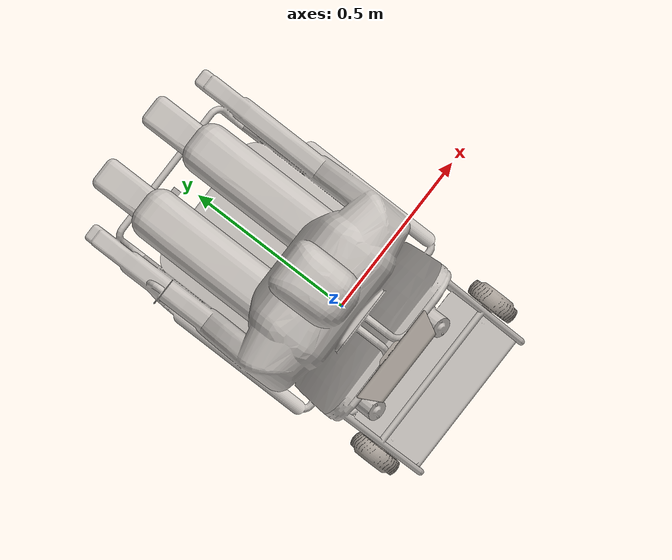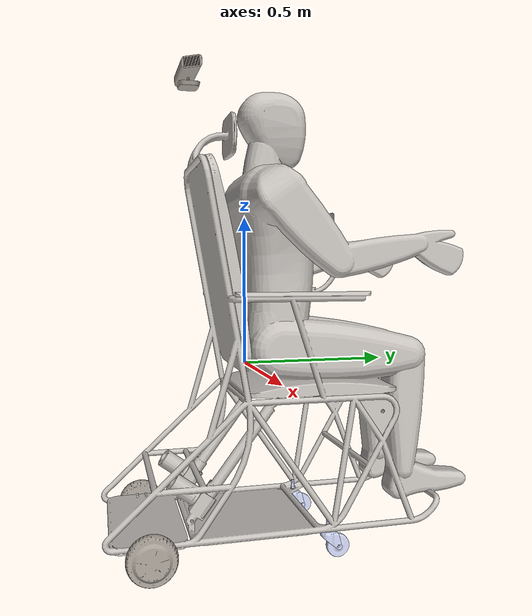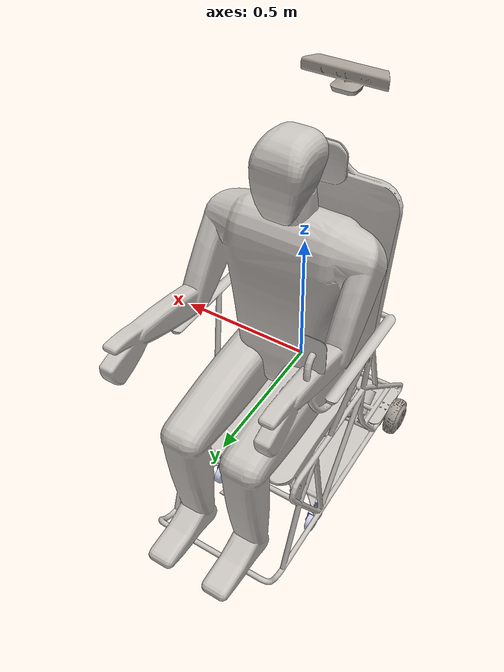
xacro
<?xml version="1.0" encoding="utf-8"?>
<robot xmlns:xacro="http://www.ros.org/wiki/xacro" name="jetchair_urdf">

<link name="base_footprint">
 </link>
 <link
    name="base_link">
    <inertial>
      <origin
        xyz="-0.0310213036661282 -0.117252104820678 -0.00595826621446557"
        rpy="0 0 0" />
      <mass
        value="80.9642334926374" />
      <inertia
        ixx="7.60414582023469"
        ixy="-0.782792858846701"
        ixz="0.0596712285100728"
        iyy="5.34758051540826"
        iyz="0.0883146530810829"
        izz="9.13344971788898" />
    </inertial>
    <visual>
      <origin
        xyz="0 0 0"
        rpy="0 0 0" />
      <geometry>
        <mesh
          filename="package://jet_main/meshes/base_link.STL" />
      </geometry>
      <material
        name="">
        <color
          rgba="0.776470588235294 0.756862745098039 0.737254901960784 1" />
      </material>
    </visual>
    <collision>
      <origin
        xyz="0 0 0"
        rpy="0 0 0" />
      <geometry>
        <mesh
          filename="package://jet_main/meshes/base_link.STL" />
      </geometry>
    </collision>
  </link>
   <joint
    name="base_joint"
    type="fixed">
    <origin
      xyz="0 0 0"
      rpy="0 0 1.57" />
    <parent
      link="base_footprint" />
    <child
      link="base_link" />
    <axis
      xyz="0 0 0" />
  </joint>

  <link
    name="right_wheel">
    <inertial>
      <origin
        xyz="2.18719486966279E-12 7.28081948653259E-06 0.0808545907421791"
        rpy="0 0 0" />
      <mass
        value="7.52810740477963" />
      <inertia
        ixx="0.0124577654624038"
        ixy="7.90440963065184E-14"
        ixz="1.10790272704899E-12"
        iyy="0.012458040042979"
        iyz="3.01210037788592E-06"
        izz="0.0212379730331371" />
    </inertial>
    <visual>
      <origin
        xyz="0 0 0"
        rpy="0 0 0" />
      <geometry>
        <mesh
          filename="package://jet_main/meshes/right_wheel.STL" />
      </geometry>
      <material
        name="">
        <color
          rgba="0.650980392156863 0.619607843137255 0.588235294117647 1" />
      </material>
    </visual>
    <collision>
      <origin
        xyz="0 0 0"
        rpy="0 0 0" />
      <geometry>
        <mesh
          filename="package://jet_main/meshes/right_wheel.STL" />
      </geometry>
    </collision>
  </link>
  <joint
    name="right_wheel_joint"
    type="continuous">
    <origin
      xyz="-0.345425505623131 -0.197945838271758 -0.55194430102951"
      rpy="1.5707963267949 0 0" />
    <parent
      link="base_link" />
    <child
      link="right_wheel" />
    <axis
      xyz="0 0 -1" />
  </joint>
  <link
    name="left_wheel">
    <inertial>
      <origin
        xyz="-2.18725038081402E-12 7.28081948653259E-06 -0.0808545907421791"
        rpy="0 0 0" />
      <mass
        value="7.52810740477961" />
      <inertia
        ixx="0.0124577654624038"
        ixy="-7.90695572382612E-14"
        ixz="1.1078969777514E-12"
        iyy="0.012458040042979"
        iyz="-3.0121003778858E-06"
        izz="0.0212379730331371" />
    </inertial>
    <visual>
      <origin
        xyz="0 0 0"
        rpy="0 0 0" />
      <geometry>
        <mesh
          filename="package://jet_main/meshes/left_wheel.STL" />
      </geometry>
      <material
        name="">
        <color
          rgba="0.650980392156863 0.619607843137255 0.588235294117647 1" />
      </material>
    </visual>
    <collision>
      <origin
        xyz="0 0 0"
        rpy="0 0 0" />
      <geometry>
        <mesh
          filename="package://jet_main/meshes/left_wheel.STL" />
      </geometry>
    </collision>
  </link>
  <joint
    name="left_wheel_joint"
    type="continuous">
    <origin
      xyz="-0.345425505623134 0.199254161728242 -0.551944301029511"
      rpy="1.5707963267949 0 0" />
    <parent
      link="base_link" />
    <child
      link="left_wheel" />
    <axis
      xyz="0 0 -1" />
  </joint>
  <link
    name="right_caster_bearing">
    <inertial>
      <origin
        xyz="0.00857738689563864 -0.022175707908113 0.000537079799070195"
        rpy="0 0 0" />
      <mass
        value="0.0303363458543203" />
      <inertia
        ixx="1.47443404963957E-05"
        ixy="4.20983653989267E-06"
        ixz="-3.43456946058865E-07"
        iyy="1.37640539299902E-05"
        iyz="4.41560643447595E-07"
        izz="1.55492065325909E-05" />
    </inertial>
    <visual>
      <origin
        xyz="0 0 0"
        rpy="0 0 0" />
      <geometry>
        <mesh
          filename="package://jet_main/meshes/right_caster_bearing.STL" />
      </geometry>
      <material
        name="">
        <color
          rgba="0.792156862745098 0.819607843137255 0.933333333333333 1" />
      </material>
    </visual>
    <collision>
      <origin
        xyz="0 0 0"
        rpy="0 0 0" />
      <geometry>
        <mesh
          filename="package://jet_main/meshes/right_caster_bearing.STL" />
      </geometry>
    </collision>
  </link>
  <joint
    name="right_cast_top_joint"
    type="continuous">
    <origin
      xyz="0.23405647736728 -0.21001090178122 -0.532182100047298"
      rpy="1.5707963267949 0 0" />
    <parent
      link="base_link" />
    <child
      link="right_caster_bearing" />
    <axis
      xyz="0 1 0" />
  </joint>
  <link
    name="right_caster_wheel">
    <inertial>
      <origin
        xyz="8.65973959207622E-15 1.4432899320127E-15 -0.0246062500000015"
        rpy="0 0 0" />
      <mass
        value="0.117595069356565" />
      <inertia
        ixx="4.72988252493348E-05"
        ixy="-2.84564689097022E-21"
        ixz="4.68844730240266E-21"
        iyy="4.72988252493348E-05"
        iyz="-4.68650601676631E-21"
        izz="8.10008855173149E-05" />
    </inertial>
    <visual>
      <origin
        xyz="0 0 0"
        rpy="0 0 0" />
      <geometry>
        <mesh
          filename="package://jet_main/meshes/right_caster_wheel.STL" />
      </geometry>
      <material
        name="">
        <color
          rgba="0.792156862745098 0.819607843137255 0.933333333333333 1" />
      </material>
    </visual>
    <collision>
      <origin
        xyz="0 0 0"
        rpy="0 0 0" />
      <geometry>
        <mesh
          filename="package://jet_main/meshes/right_caster_wheel.STL" />
      </geometry>
    </collision>
  </link>
  <joint
    name="right_cast_bottom_joint"
    type="continuous">
    <origin
      xyz="0.0342681608192805 -0.0623782373405626 0.0246062499999999"
      rpy="0 0 0" />
    <parent
      link="right_caster_bearing" />
    <child
      link="right_caster_wheel" />
    <axis
      xyz="0 0 -1" />
  </joint>
  <link
    name="left_caster_bearing">
    <inertial>
      <origin
        xyz="0.00857738691168408 -0.0221757079081139 0.000537079798720114"
        rpy="0 0 0" />
      <mass
        value="0.0303363458543198" />
      <inertia
        ixx="1.47443404747391E-05"
        ixy="4.20983653806445E-06"
        ixz="-3.43456974644208E-07"
        iyy="1.37640539299901E-05"
        iyz="4.41560643416159E-07"
        izz="1.5549206554247E-05" />
    </inertial>
    <visual>
      <origin
        xyz="0 0 0"
        rpy="0 0 0" />
      <geometry>
        <mesh
          filename="package://jet_main/meshes/left_caster_bearing.STL" />
      </geometry>
      <material
        name="">
        <color
          rgba="0.792156862745098 0.819607843137255 0.933333333333333 1" />
      </material>
    </visual>
    <collision>
      <origin
        xyz="0 0 0"
        rpy="0 0 0" />
      <geometry>
        <mesh
          filename="package://jet_main/meshes/left_caster_bearing.STL" />
      </geometry>
    </collision>
  </link>
  <joint
    name="left_cast_top_joint"
    type="continuous">
    <origin
      xyz="0.234056477367286 0.214319225237707 -0.532182100047298"
      rpy="1.5707963267949 0 0" />
    <parent
      link="base_link" />
    <child
      link="left_caster_bearing" />
    <axis
      xyz="0 1 0" />
  </joint>
  <link
    name="left_caster_wheel">
    <inertial>
      <origin
        xyz="2.77555756156289E-16 0 -0.02460625"
        rpy="0 0 0" />
      <mass
        value="0.117595069356565" />
      <inertia
        ixx="4.72988252493356E-05"
        ixy="-1.33906203375052E-22"
        ixz="-1.97076603661464E-20"
        iyy="4.72988252493356E-05"
        iyz="-4.82872516489977E-21"
        izz="8.10008855173164E-05" />
    </inertial>
    <visual>
      <origin
        xyz="0 0 0"
        rpy="0 0 0" />
      <geometry>
        <mesh
          filename="package://jet_main/meshes/left_caster_wheel.STL" />
      </geometry>
      <material
        name="">
        <color
          rgba="0.792156862745098 0.819607843137255 0.933333333333333 1" />
      </material>
    </visual>
    <collision>
      <origin
        xyz="0 0 0"
        rpy="0 0 0" />
      <geometry>
        <mesh
          filename="package://jet_main/meshes/left_caster_wheel.STL" />
      </geometry>
    </collision>
  </link>
  <joint
    name="left_cast_bottom_joint"
    type="continuous">
    <origin
      xyz="0.0342681608192785 -0.0623782373405634 0.0246062500000033"
      rpy="0 0 0" />
    <parent
      link="left_caster_bearing" />
    <child
      link="left_caster_wheel" />
    <axis
      xyz="0 0 -1" />
  </joint>
  <link
    name="lidar">
    <inertial>
      <origin
        xyz="-0.00676832715317711 0.0073878521073858 9.17768374699185E-05"
        rpy="0 0 0" />
      <mass
        value="1.33041048124832" />
      <inertia
        ixx="0.000614736954229149"
        ixy="0.000158189979278382"
        ixz="-8.00271259590246E-07"
        iyy="0.00109812375363565"
        iyz="-3.09603626647974E-06"
        izz="0.000960497023041251" />
    </inertial>
    <visual>
      <origin
        xyz="0 0 0"
        rpy="+1.57 0 0" />
      <geometry>
        <mesh
          filename="package://jet_main/meshes/lidar_link.STL" />
      </geometry>
      <material
        name="">
        <color
          rgba="0.298039215686275 0.298039215686275 0.298039215686275 1" />
      </material>
    </visual>
    <collision>
      <origin
        xyz="0 0 0"
        rpy="1.57 0 0" />
      <geometry>
        <mesh
          filename="package://jet_main/meshes/lidar_link.STL" />
      </geometry>
    </collision>
  </link>
  <joint
    name="lidar_joint"
    type="fixed">
    <origin
      xyz="-0.00679301908261565 0.00215416172824181 -0.582514301029511"
      rpy="3.14 0 0 " />
    <parent
      link="base_link" />
    <child
      link="lidar" />
    <axis
      xyz="0 0 0" />
  </joint>

 <link
    name="kinect_cam">
    <inertial>
      <origin
        xyz="0 0 0"
        rpy="0 0 0" />
      <mass
        value="0.5" />
      <inertia
        ixx="0"
        ixy="0"
        ixz="0"
        iyy="0"
        iyz="0"
        izz="0" />
    </inertial>
    <visual>
      <origin
        xyz="-0.12 0 -0.05"
        rpy="0 0 0" />
      <geometry>
        <mesh
          filename="package://jet_main/meshes/Kinect.STL" scale="0.001 0.001 0.001" />
      </geometry>
      <material
        name="">
        <color
          rgba="0.650980392156863 0.619607843137255 0.588235294117647 1" />
      </material>
    </visual>
    <collision>
      <origin
        xyz="0 0 0"
        rpy="0 0 0" />
      <geometry>
        <mesh
          filename="package://jet_main/meshes/Kinect.STL" scale="0.001 0.001 0.001" />
      </geometry>
    </collision>
  </link>
  <joint
    name="kinect_joint"
    type="fixed">
    <origin
      xyz="-0.15 0 0.98"
      rpy="0 0 1.57" />
    <parent
      link="base_link" />
    <child
      link="kinect_cam" />
    <axis
      xyz="0 0 0" />
  </joint>

  <gazebo reference="lidar">
    <sensor type="ray" name="laser_sensor">
      <pose>0 0 0 0 0 0</pose>
      <visualize>true</visualize>
      <update_rate>10.0</update_rate>
      <ray>
        <scan>
          <horizontal>
            <samples>360</samples>
            <resolution>1</resolution>
            <min_angle>-3.14</min_angle>
            <max_angle>3.14</max_angle>
          </horizontal>
        </scan>
        <range>
          <min>0.7</min>
          <max>12.0</max>
          <resolution>1</resolution>
        </range>
        <noise>
          <type>gaussian</type>
          <mean>0</mean>
          <stddev>0.01</stddev>
        </noise>
      </ray>
      <plugin name="laser_controller" filename="libgazebo_ros_laser.so">
        <ros>
          <argument>~/out:=scan</argument>
        </ros>
        <output_type>sensor_msgs/LaserScan</output_type>
        <topicName>/scan</topicName>
        <frameName>lidar</frameName>
      </plugin>
    </sensor>
  </gazebo>
<!-- Transmission for Right Wheel -->
 <gazebo reference="right_wheel">
    <mu1>100000000000000.0</mu1>
    <mu2>100000000000000.0</mu2>
    <kp>10000000000.0</kp>
    <kd>10.0</kd>
    <minDepth>0.001</minDepth>
    <maxVel>0.22</maxVel>
    <fdirl>0 0 1</fdirl>
    </gazebo>
  <gazebo reference="left_wheel">
    <mu1>100000000000000.0</mu1>
    <mu2>1000000000000000.0</mu2>
    <kp>10000000000.0</kp>
    <kd>10.0</kd>
    <minDepth>0.001</minDepth>
    <maxVel>0.22</maxVel>
    <fdirl>0 0 1</fdirl>
    </gazebo>
    <gazebo reference="left_caster_wheel">
    <mu1>0.1.0</mu1>
    <mu2>0.1.0</mu2>
    <kp>100000000000.0</kp>
    <kd>10.0</kd>
    <minDepth>0.001</minDepth>
    <maxVel>0.22</maxVel>
    <fdirl>0 0 1</fdirl>
    </gazebo>
     <gazebo reference="right_caster_wheel">
    <mu1>0.1</mu1>
    <mu2>0.1</mu2>
    <kp>100000000000.0</kp>
    <kd>10.0</kd>
    <minDepth>0.001</minDepth>
    <maxVel>0.22</maxVel>
    <fdirl>0 0 1</fdirl>
    </gazebo>
<transmission name="right_wheel_transmission">
  <type>transmission_interface/SimpleTransmission</type>
  <joint name="right_wheel_joint">
    <hardwareInterface>VelocityJointInterface</hardwareInterface>
  </joint>
  <actuator name="right_wheel_motor">
    <hardwareInterface>VelocityActuatorInterface</hardwareInterface>
    <mechanicalReduction>1</mechanicalReduction>
  </actuator>
</transmission>

<transmission name="left_wheel_transmission">
  <type>transmission_interface/SimpleTransmission</type>
  <joint name="left_wheel_joint">
    <hardwareInterface>VelocityJointInterface</hardwareInterface>
  </joint>
  <actuator name="left_wheel_motor">
    <hardwareInterface>VelocityActuatorInterface</hardwareInterface>
    <mechanicalReduction>1</mechanicalReduction>
  </actuator>
</transmission>

 <gazebo>
    <plugin name="controller" filename="libgazebo_ros_diff_drive.so">
      <commandTopic>cmd_vel</commandTopic>
      <odometryTopic>odom</odometryTopic>
      <odometryFrame>odom</odometryFrame>
      <odometrySource>scan</odometrySource>
      <publishOdomTF>true</publishOdomTF>
      <robotBaseFrame>base_footprint</robotBaseFrame>
      <publishWheelTF>false</publishWheelTF>
      <publishTf>true</publishTf>
      <publishWheelJointState>true</publishWheelJointState>
      <legacyMode>false</legacyMode>
      <updateRate>10</updateRate>
      <leftJoint>left_wheel_joint</leftJoint>
      <rightJoint>right_wheel_joint</rightJoint>
      <wheelSeparation>0.472</wheelSeparation>
      <wheelDiameter>0.20</wheelDiameter>
      <wheelAcceleration>1</wheelAcceleration>
      <wheelTorque>100</wheelTorque>
      <rosDebugLevel>na</rosDebugLevel>
    </plugin>
  </gazebo>

</robot>
